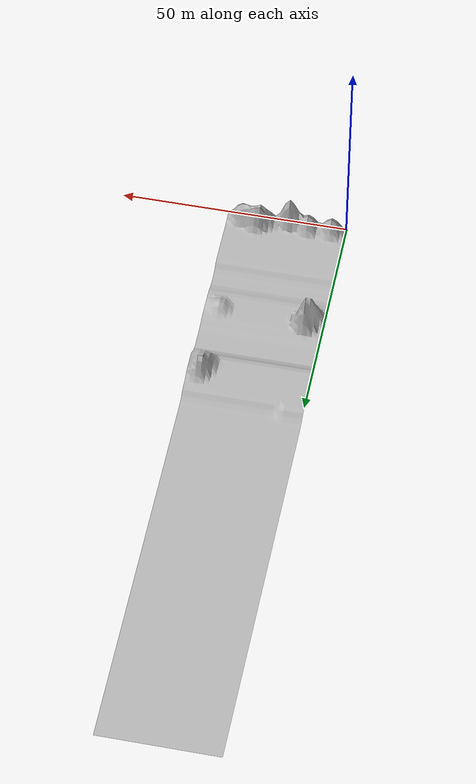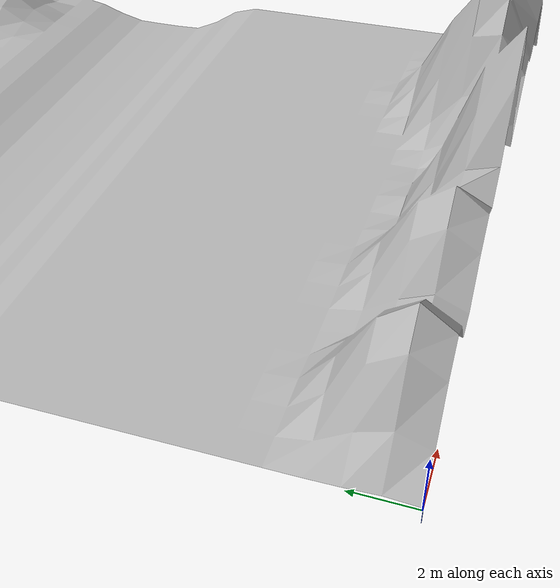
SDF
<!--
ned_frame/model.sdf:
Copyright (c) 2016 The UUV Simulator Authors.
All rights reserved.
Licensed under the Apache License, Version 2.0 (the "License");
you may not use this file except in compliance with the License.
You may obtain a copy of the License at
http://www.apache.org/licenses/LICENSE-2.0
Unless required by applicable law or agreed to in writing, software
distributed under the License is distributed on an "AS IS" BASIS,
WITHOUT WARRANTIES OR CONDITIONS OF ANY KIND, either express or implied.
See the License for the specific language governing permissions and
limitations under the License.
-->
<sdf version="1.6">
 <world name="default">
  <physics name="default_physics" default="true" type="ode">
   <max_step_size>0.002</max_step_size>
   <real_time_factor>1</real_time_factor>
   <real_time_update_rate>500</real_time_update_rate>
  </physics>
  <scene>
   <ambient>0.01 0.01 0.01 1.0</ambient>
   <sky><clouds><speed>12</speed></clouds></sky>
   <shadows>1</shadows>
  </scene>
  <spherical_coordinates>
   <latitude_deg>56.71897669633431</latitude_deg>
   <longitude_deg>3.515625</longitude_deg>
  </spherical_coordinates>
  <include><uri>model://ned_frame</uri></include>
  <include><uri>model://ky2_world_reduce</uri><pose>0 0 -1.4 0 0 0</pose></include>
  <light type="directional" name="sun1">
   <pose>50 0 150 0 0 0</pose>
   <diffuse>1 1 1 1</diffuse>
   <specular>.1 .1 .1 1</specular>
   <direction>0.3 0.3 -1</direction>
   <cast_shadows>false</cast_shadows>
  </light>
  <plugin name="underwater_current_plugin" filename="libuuv_underwater_current_ros_plugin.so">
   <fluid_density>1028.0</fluid_density>
   <namespace>hydrodynamics</namespace>
   <height>0.0</height>
   <constant_current>
    <topic>current_velocity</topic>
    <velocity><mean>0</mean><min>0</min><max>5</max><mu>0.0</mu><noiseAmp>0.0</noiseAmp></velocity>
    <horizontal_angle>
     <mean>0</mean>
     <min>-3.141592653589793238</min>
     <max>3.141592653589793238</max>
     <mu>0.0</mu>
     <noiseAmp>0.0</noiseAmp>
    </horizontal_angle>
    <vertical_angle>
     <mean>0</mean>
     <min>-3.141592653589793238</min>
     <max>3.141592653589793238</max>
     <mu>0.0</mu>
     <noiseAmp>0.0</noiseAmp>
    </vertical_angle>
   </constant_current>
  </plugin>
  <plugin name="sc_interface" filename="libuuv_sc_ros_interface_plugin.so"/>
 </world>
</sdf>

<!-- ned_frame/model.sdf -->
<sdf version='1.5'>
    <model name="world_ned">

      <pose>0 0 0 0 0 0</pose>
      <static>true</static>

      <link name="world_ned">
        <gravity>0</gravity>
        <pose>0 0 0 3.14159265359 0 1.5707963267948966</pose>

        <visual name="N_visual">
          <pose>0.25 0 0 1.5707963267948966 0 1.5707963267948966</pose>
          <geometry>
            <cylinder>
              <radius>0.01</radius>
              <length>0.5</length>
            </cylinder>
          </geometry>
          <material>
            <script>
              <uri>file://media/materials/scripts/gazebo.material</uri>
              <name>Gazebo/Red</name>
            </script>
          </material>
        </visual>

        <visual name="E_visual">
          <pose>0 0.25 0 1.5707963267948966 0 0</pose>
          <geometry>
            <cylinder>
              <radius>0.01</radius>
              <length>0.5</length>
            </cylinder>
          </geometry>
          <material>
            <script>
              <uri>file://media/materials/scripts/gazebo.material</uri>
              <name>Gazebo/Green</name>
            </script>
          </material>
        </visual>

        <visual name="D_visual">
          <pose>0 0 0.25 0 0 0</pose>
          <geometry>
            <cylinder>
              <radius>0.01</radius>
              <length>0.5</length>
            </cylinder>
          </geometry>
          <material>
            <script>
              <uri>file://media/materials/scripts/gazebo.material</uri>
              <name>Gazebo/Blue</name>
            </script>
          </material>
        </visual>
      </link>
    </model>
</sdf>

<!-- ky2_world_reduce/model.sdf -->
<sdf version="1.6">
    <model name="river_mountain">
        <static>true</static>
        <link name="link">
            <visual name="visual">
                <geometry>
                    <mesh>
                        <uri>
                            file://models/demo_cross_river/mesh/visual_5_3__1.dae
                        </uri>
                        <scale>0.35 0.35 0.35</scale>
                    </mesh>
                </geometry>
            </visual>
            <collision name="coll">
                <geometry>
                    <mesh>
                        <uri>
                            file://models/demo_cross_river/mesh/coll_5_3__1.dae
                        </uri>
                        <scale>0.35 0.35 0.35</scale>
                    </mesh>
                </geometry>
                <surface>
                    <friction>
                      <ode>
                        <mu>0.8</mu>  <!-- 摩擦系数 -->
                        <mu2>0.8</mu2>
                      </ode>
                    </friction>
                  </surface>
            </collision>
        </link>
    </model>
</sdf>
